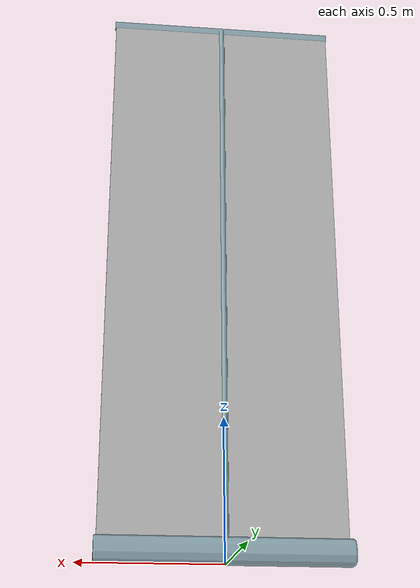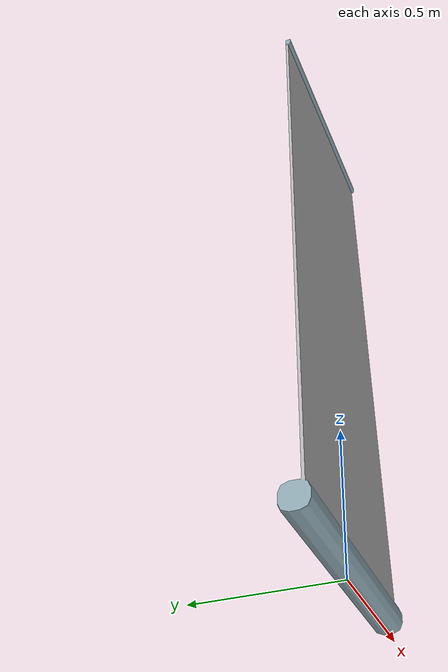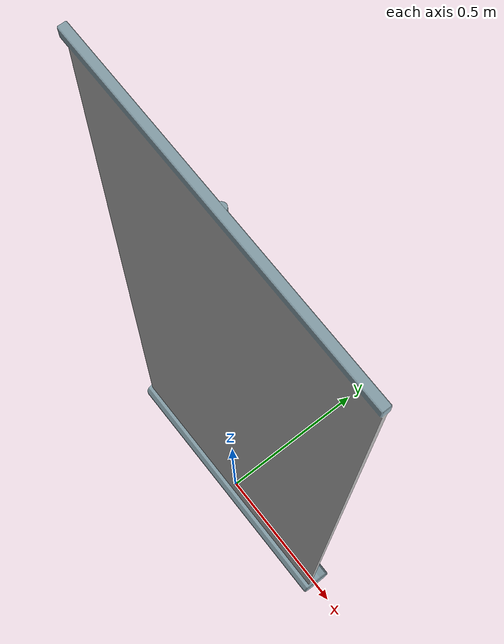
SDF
<?xml version="1.0" ?>
<sdf version="1.6">
  <model name="clf_hybrid_living_poster">
    <static>true</static>
    <link name="link">
      <collision name="collision">
        <geometry>
          <mesh>
            <uri>model://clf_hybrid_living_poster/meshes/poster_collision.dae</uri>
          </mesh>
        </geometry>
      </collision>
      <visual name="visual">
        <geometry>
          <mesh>
            <uri>model://clf_hybrid_living_poster/meshes/poster.dae</uri>
          </mesh>
        </geometry>
      </visual>
    </link>
  </model>
</sdf>
